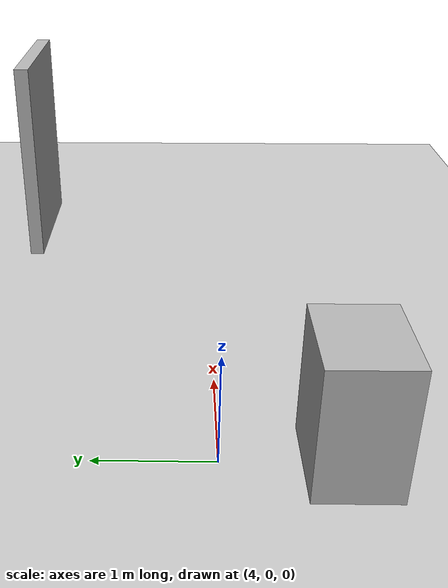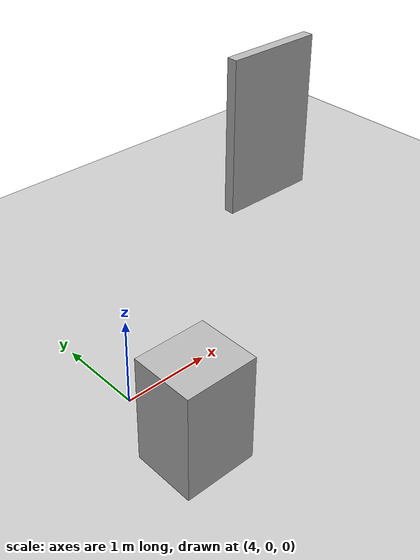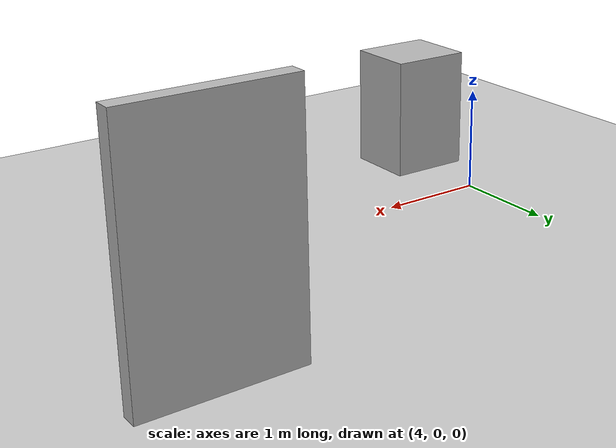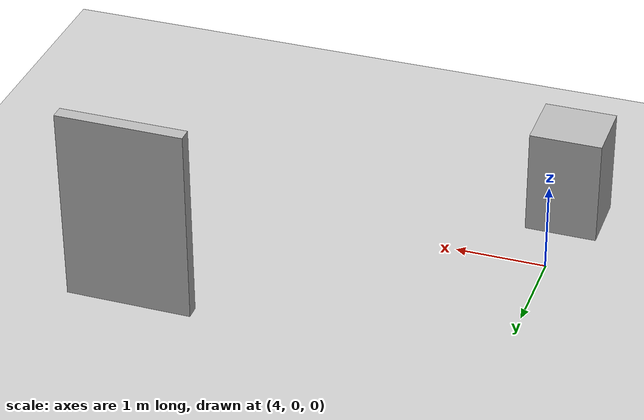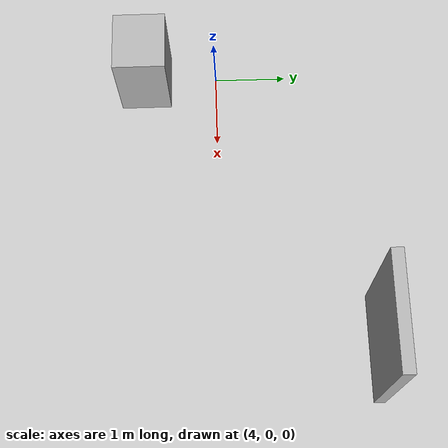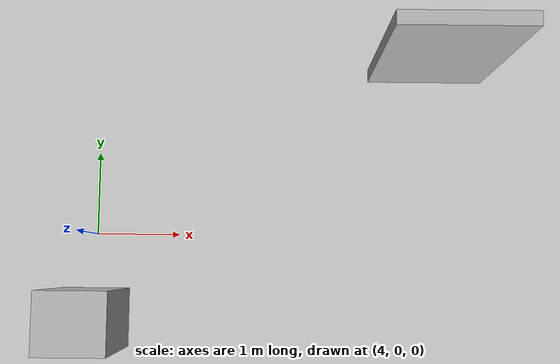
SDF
<?xml version="1.0"?>
<sdf version="1.9"><world name="hotel_lobby"><plugin filename="gz-sim-physics-system" name="gz::sim::systems::Physics"/><plugin filename="gz-sim-scene-broadcaster-system" name="gz::sim::systems::SceneBroadcaster"/><include><uri>model://sun</uri></include><include><uri>model://ground_plane</uri></include><model name="luggage_cart"><static>true</static><pose>4 -1 0.6 0 0 0</pose><link name="link"><collision name="c"><geometry><box><size>0.8 0.7 1.2</size></box></geometry></collision><visual name="v"><geometry><box><size>0.8 0.7 1.2</size></box></geometry></visual></link></model><model name="elevator_placeholder"><static>true</static><pose>8 2 1.1 0 0 0</pose><link name="link"><collision name="c"><geometry><box><size>1.4 0.15 2.2</size></box></geometry></collision><visual name="v"><geometry><box><size>1.4 0.15 2.2</size></box></geometry></visual></link></model></world></sdf>
